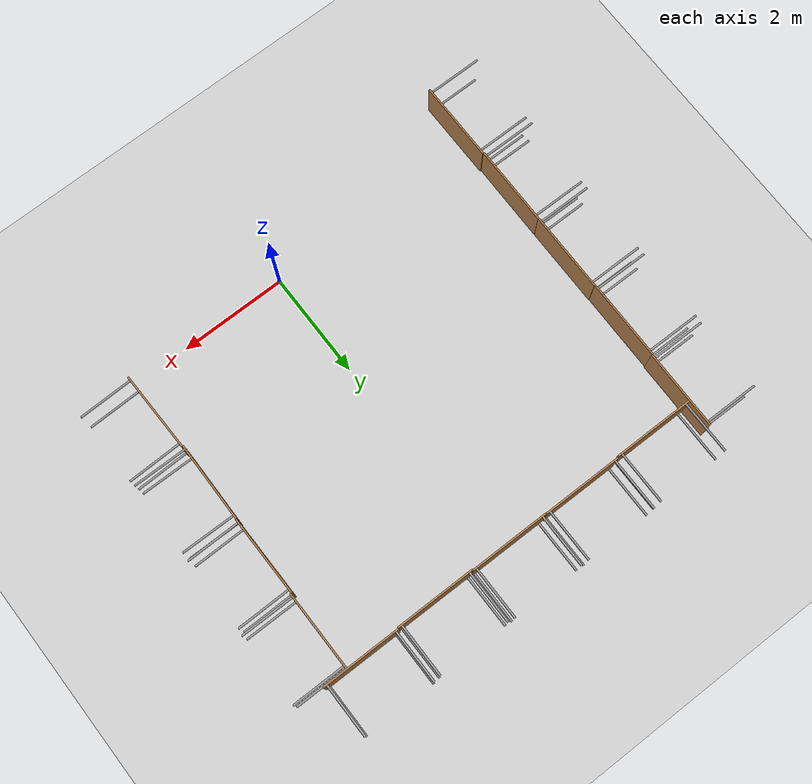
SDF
<sdf version="1.6">
 <world name="default">
  <model name="ground_plane">
   <static>1</static>
   <link name="link">
    <collision name="collision">
     <geometry><plane><normal>0 0 1</normal><size>100 100</size></plane></geometry>
     <surface><friction><ode><mu>100</mu><mu2>50</mu2></ode></friction></surface>
    </collision>
    <visual name="visual">
     <cast_shadows>0</cast_shadows>
     <geometry><plane><normal>0 0 1</normal><size>100 100</size></plane></geometry>
     <material>
      <script><uri>file://media/materials/scripts/gazebo.material</uri><name>Gazebo/Grey</name></script>
     </material>
    </visual>
    <velocity_decay><linear>0</linear><angular>0</angular></velocity_decay>
   </link>
  </model>
  <model name="table">
   <static>1</static>
   <link name="link">
    <collision name="surface">
     <pose>0 0 1 0 -0 0</pose>
     <geometry><box><size>1.5 0.8 0.03</size></box></geometry>
     <surface><friction><ode><mu>0.6</mu><mu2>0.6</mu2></ode></friction></surface>
    </collision>
    <visual name="visual1">
     <pose>0 0 1 0 -0 0</pose>
     <geometry><box><size>1.5 0.8 0.03</size></box></geometry>
     <material>
      <script><uri>file://media/materials/scripts/gazebo.material</uri><name>Gazebo/Wood</name></script>
     </material>
    </visual>
    <collision name="front_left_leg">
     <pose>0.68 0.38 0.5 0 -0 0</pose>
     <geometry><cylinder><radius>0.02</radius><length>1</length></cylinder></geometry>
    </collision>
    <visual name="front_left_leg">
     <pose>0.68 0.38 0.5 0 -0 0</pose>
     <geometry><cylinder><radius>0.02</radius><length>1</length></cylinder></geometry>
     <material>
      <script><uri>file://media/materials/scripts/gazebo.material</uri><name>Gazebo/Grey</name></script>
     </material>
    </visual>
    <collision name="front_right_leg">
     <pose>0.68 -0.38 0.5 0 -0 0</pose>
     <geometry><cylinder><radius>0.02</radius><length>1</length></cylinder></geometry>
    </collision>
    <visual name="front_right_leg">
     <pose>0.68 -0.38 0.5 0 -0 0</pose>
     <geometry><cylinder><radius>0.02</radius><length>1</length></cylinder></geometry>
     <material>
      <script><uri>file://media/materials/scripts/gazebo.material</uri><name>Gazebo/Grey</name></script>
     </material>
    </visual>
    <collision name="back_right_leg">
     <pose>-0.68 -0.38 0.5 0 -0 0</pose>
     <geometry><cylinder><radius>0.02</radius><length>1</length></cylinder></geometry>
    </collision>
    <visual name="back_right_leg">
     <pose>-0.68 -0.38 0.5 0 -0 0</pose>
     <geometry><cylinder><radius>0.02</radius><length>1</length></cylinder></geometry>
     <material>
      <script><uri>file://media/materials/scripts/gazebo.material</uri><name>Gazebo/Grey</name></script>
     </material>
    </visual>
    <collision name="back_left_leg">
     <pose>-0.68 0.38 0.5 0 -0 0</pose>
     <geometry><cylinder><radius>0.02</radius><length>1</length></cylinder></geometry>
    </collision>
    <visual name="back_left_leg">
     <pose>-0.68 0.38 0.5 0 -0 0</pose>
     <geometry><cylinder><radius>0.02</radius><length>1</length></cylinder></geometry>
     <material>
      <script><uri>file://media/materials/scripts/gazebo.material</uri><name>Gazebo/Grey</name></script>
     </material>
    </visual>
    <velocity_decay><linear>0</linear><angular>0</angular></velocity_decay>
   </link>
   <pose>-1.72744 7.02472 0.377492 1.56736 -0 0</pose>
  </model>
  <model name="table_0">
   <static>1</static>
   <link name="link">
    <collision name="surface">
     <pose>0 0 1 0 -0 0</pose>
     <geometry><box><size>1.5 0.8 0.03</size></box></geometry>
     <surface><friction><ode><mu>0.6</mu><mu2>0.6</mu2></ode></friction></surface>
    </collision>
    <visual name="visual1">
     <pose>0 0 1 0 -0 0</pose>
     <geometry><box><size>1.5 0.8 0.03</size></box></geometry>
     <material>
      <script><uri>file://media/materials/scripts/gazebo.material</uri><name>Gazebo/Wood</name></script>
     </material>
    </visual>
    <collision name="front_left_leg">
     <pose>0.68 0.38 0.5 0 -0 0</pose>
     <geometry><cylinder><radius>0.02</radius><length>1</length></cylinder></geometry>
    </collision>
    <visual name="front_left_leg">
     <pose>0.68 0.38 0.5 0 -0 0</pose>
     <geometry><cylinder><radius>0.02</radius><length>1</length></cylinder></geometry>
     <material>
      <script><uri>file://media/materials/scripts/gazebo.material</uri><name>Gazebo/Grey</name></script>
     </material>
    </visual>
    <collision name="front_right_leg">
     <pose>0.68 -0.38 0.5 0 -0 0</pose>
     <geometry><cylinder><radius>0.02</radius><length>1</length></cylinder></geometry>
    </collision>
    <visual name="front_right_leg">
     <pose>0.68 -0.38 0.5 0 -0 0</pose>
     <geometry><cylinder><radius>0.02</radius><length>1</length></cylinder></geometry>
     <material>
      <script><uri>file://media/materials/scripts/gazebo.material</uri><name>Gazebo/Grey</name></script>
     </material>
    </visual>
    <collision name="back_right_leg">
     <pose>-0.68 -0.38 0.5 0 -0 0</pose>
     <geometry><cylinder><radius>0.02</radius><length>1</length></cylinder></geometry>
    </collision>
    <visual name="back_right_leg">
     <pose>-0.68 -0.38 0.5 0 -0 0</pose>
     <geometry><cylinder><radius>0.02</radius><length>1</length></cylinder></geometry>
     <material>
      <script><uri>file://media/materials/scripts/gazebo.material</uri><name>Gazebo/Grey</name></script>
     </material>
    </visual>
    <collision name="back_left_leg">
     <pose>-0.68 0.38 0.5 0 -0 0</pose>
     <geometry><cylinder><radius>0.02</radius><length>1</length></cylinder></geometry>
    </collision>
    <visual name="back_left_leg">
     <pose>-0.68 0.38 0.5 0 -0 0</pose>
     <geometry><cylinder><radius>0.02</radius><length>1</length></cylinder></geometry>
     <material>
      <script><uri>file://media/materials/scripts/gazebo.material</uri><name>Gazebo/Grey</name></script>
     </material>
    </visual>
    <velocity_decay><linear>0</linear><angular>0</angular></velocity_decay>
   </link>
   <pose>-0.21834 7.01913 0.401819 1.56825 -0 0</pose>
  </model>
  <model name="table_1">
   <static>1</static>
   <link name="link">
    <collision name="surface">
     <pose>0 0 1 0 -0 0</pose>
     <geometry><box><size>1.5 0.8 0.03</size></box></geometry>
     <surface><friction><ode><mu>0.6</mu><mu2>0.6</mu2></ode></friction></surface>
    </collision>
    <visual name="visual1">
     <pose>0 0 1 0 -0 0</pose>
     <geometry><box><size>1.5 0.8 0.03</size></box></geometry>
     <material>
      <script><uri>file://media/materials/scripts/gazebo.material</uri><name>Gazebo/Wood</name></script>
     </material>
    </visual>
    <collision name="front_left_leg">
     <pose>0.68 0.38 0.5 0 -0 0</pose>
     <geometry><cylinder><radius>0.02</radius><length>1</length></cylinder></geometry>
    </collision>
    <visual name="front_left_leg">
     <pose>0.68 0.38 0.5 0 -0 0</pose>
     <geometry><cylinder><radius>0.02</radius><length>1</length></cylinder></geometry>
     <material>
      <script><uri>file://media/materials/scripts/gazebo.material</uri><name>Gazebo/Grey</name></script>
     </material>
    </visual>
    <collision name="front_right_leg">
     <pose>0.68 -0.38 0.5 0 -0 0</pose>
     <geometry><cylinder><radius>0.02</radius><length>1</length></cylinder></geometry>
    </collision>
    <visual name="front_right_leg">
     <pose>0.68 -0.38 0.5 0 -0 0</pose>
     <geometry><cylinder><radius>0.02</radius><length>1</length></cylinder></geometry>
     <material>
      <script><uri>file://media/materials/scripts/gazebo.material</uri><name>Gazebo/Grey</name></script>
     </material>
    </visual>
    <collision name="back_right_leg">
     <pose>-0.68 -0.38 0.5 0 -0 0</pose>
     <geometry><cylinder><radius>0.02</radius><length>1</length></cylinder></geometry>
    </collision>
    <visual name="back_right_leg">
     <pose>-0.68 -0.38 0.5 0 -0 0</pose>
     <geometry><cylinder><radius>0.02</radius><length>1</length></cylinder></geometry>
     <material>
      <script><uri>file://media/materials/scripts/gazebo.material</uri><name>Gazebo/Grey</name></script>
     </material>
    </visual>
    <collision name="back_left_leg">
     <pose>-0.68 0.38 0.5 0 -0 0</pose>
     <geometry><cylinder><radius>0.02</radius><length>1</length></cylinder></geometry>
    </collision>
    <visual name="back_left_leg">
     <pose>-0.68 0.38 0.5 0 -0 0</pose>
     <geometry><cylinder><radius>0.02</radius><length>1</length></cylinder></geometry>
     <material>
      <script><uri>file://media/materials/scripts/gazebo.material</uri><name>Gazebo/Grey</name></script>
     </material>
    </visual>
    <velocity_decay><linear>0</linear><angular>0</angular></velocity_decay>
   </link>
   <pose>1.27062 7.00509 0.422156 1.5692 -0 0</pose>
  </model>
  <model name="table_2">
   <static>1</static>
   <link name="link">
    <collision name="surface">
     <pose>0 0 1 0 -0 0</pose>
     <geometry><box><size>1.5 0.8 0.03</size></box></geometry>
     <surface><friction><ode><mu>0.6</mu><mu2>0.6</mu2></ode></friction></surface>
    </collision>
    <visual name="visual1">
     <pose>0 0 1 0 -0 0</pose>
     <geometry><box><size>1.5 0.8 0.03</size></box></geometry>
     <material>
      <script><uri>file://media/materials/scripts/gazebo.material</uri><name>Gazebo/Wood</name></script>
     </material>
    </visual>
    <collision name="front_left_leg">
     <pose>0.68 0.38 0.5 0 -0 0</pose>
     <geometry><cylinder><radius>0.02</radius><length>1</length></cylinder></geometry>
    </collision>
    <visual name="front_left_leg">
     <pose>0.68 0.38 0.5 0 -0 0</pose>
     <geometry><cylinder><radius>0.02</radius><length>1</length></cylinder></geometry>
     <material>
      <script><uri>file://media/materials/scripts/gazebo.material</uri><name>Gazebo/Grey</name></script>
     </material>
    </visual>
    <collision name="front_right_leg">
     <pose>0.68 -0.38 0.5 0 -0 0</pose>
     <geometry><cylinder><radius>0.02</radius><length>1</length></cylinder></geometry>
    </collision>
    <visual name="front_right_leg">
     <pose>0.68 -0.38 0.5 0 -0 0</pose>
     <geometry><cylinder><radius>0.02</radius><length>1</length></cylinder></geometry>
     <material>
      <script><uri>file://media/materials/scripts/gazebo.material</uri><name>Gazebo/Grey</name></script>
     </material>
    </visual>
    <collision name="back_right_leg">
     <pose>-0.68 -0.38 0.5 0 -0 0</pose>
     <geometry><cylinder><radius>0.02</radius><length>1</length></cylinder></geometry>
    </collision>
    <visual name="back_right_leg">
     <pose>-0.68 -0.38 0.5 0 -0 0</pose>
     <geometry><cylinder><radius>0.02</radius><length>1</length></cylinder></geometry>
     <material>
      <script><uri>file://media/materials/scripts/gazebo.material</uri><name>Gazebo/Grey</name></script>
     </material>
    </visual>
    <collision name="back_left_leg">
     <pose>-0.68 0.38 0.5 0 -0 0</pose>
     <geometry><cylinder><radius>0.02</radius><length>1</length></cylinder></geometry>
    </collision>
    <visual name="back_left_leg">
     <pose>-0.68 0.38 0.5 0 -0 0</pose>
     <geometry><cylinder><radius>0.02</radius><length>1</length></cylinder></geometry>
     <material>
      <script><uri>file://media/materials/scripts/gazebo.material</uri><name>Gazebo/Grey</name></script>
     </material>
    </visual>
    <velocity_decay><linear>0</linear><angular>0</angular></velocity_decay>
   </link>
   <pose>-3.24093 7.00952 0.41318 1.56982 -0 0</pose>
  </model>
  <model name="table_3">
   <static>1</static>
   <link name="link">
    <collision name="surface">
     <pose>0 0 1 0 -0 0</pose>
     <geometry><box><size>1.5 0.8 0.03</size></box></geometry>
     <surface><friction><ode><mu>0.6</mu><mu2>0.6</mu2></ode></friction></surface>
    </collision>
    <visual name="visual1">
     <pose>0 0 1 0 -0 0</pose>
     <geometry><box><size>1.5 0.8 0.03</size></box></geometry>
     <material>
      <script><uri>file://media/materials/scripts/gazebo.material</uri><name>Gazebo/Wood</name></script>
     </material>
    </visual>
    <collision name="front_left_leg">
     <pose>0.68 0.38 0.5 0 -0 0</pose>
     <geometry><cylinder><radius>0.02</radius><length>1</length></cylinder></geometry>
    </collision>
    <visual name="front_left_leg">
     <pose>0.68 0.38 0.5 0 -0 0</pose>
     <geometry><cylinder><radius>0.02</radius><length>1</length></cylinder></geometry>
     <material>
      <script><uri>file://media/materials/scripts/gazebo.material</uri><name>Gazebo/Grey</name></script>
     </material>
    </visual>
    <collision name="front_right_leg">
     <pose>0.68 -0.38 0.5 0 -0 0</pose>
     <geometry><cylinder><radius>0.02</radius><length>1</length></cylinder></geometry>
    </collision>
    <visual name="front_right_leg">
     <pose>0.68 -0.38 0.5 0 -0 0</pose>
     <geometry><cylinder><radius>0.02</radius><length>1</length></cylinder></geometry>
     <material>
      <script><uri>file://media/materials/scripts/gazebo.material</uri><name>Gazebo/Grey</name></script>
     </material>
    </visual>
    <collision name="back_right_leg">
     <pose>-0.68 -0.38 0.5 0 -0 0</pose>
     <geometry><cylinder><radius>0.02</radius><length>1</length></cylinder></geometry>
    </collision>
    <visual name="back_right_leg">
     <pose>-0.68 -0.38 0.5 0 -0 0</pose>
     <geometry><cylinder><radius>0.02</radius><length>1</length></cylinder></geometry>
     <material>
      <script><uri>file://media/materials/scripts/gazebo.material</uri><name>Gazebo/Grey</name></script>
     </material>
    </visual>
    <collision name="back_left_leg">
     <pose>-0.68 0.38 0.5 0 -0 0</pose>
     <geometry><cylinder><radius>0.02</radius><length>1</length></cylinder></geometry>
    </collision>
    <visual name="back_left_leg">
     <pose>-0.68 0.38 0.5 0 -0 0</pose>
     <geometry><cylinder><radius>0.02</radius><length>1</length></cylinder></geometry>
     <material>
      <script><uri>file://media/materials/scripts/gazebo.material</uri><name>Gazebo/Grey</name></script>
     </material>
    </visual>
    <velocity_decay><linear>0</linear><angular>0</angular></velocity_decay>
   </link>
   <pose>2.76108 7.0224 0.393768 1.57395 -0 0</pose>
  </model>
  <model name="table_4">
   <static>1</static>
   <link name="link">
    <collision name="surface">
     <pose>0 0 1 0 -0 0</pose>
     <geometry><box><size>1.5 0.8 0.03</size></box></geometry>
     <surface><friction><ode><mu>0.6</mu><mu2>0.6</mu2></ode></friction></surface>
    </collision>
    <visual name="visual1">
     <pose>0 0 1 0 -0 0</pose>
     <geometry><box><size>1.5 0.8 0.03</size></box></geometry>
     <material>
      <script><uri>file://media/materials/scripts/gazebo.material</uri><name>Gazebo/Wood</name></script>
     </material>
    </visual>
    <collision name="front_left_leg">
     <pose>0.68 0.38 0.5 0 -0 0</pose>
     <geometry><cylinder><radius>0.02</radius><length>1</length></cylinder></geometry>
    </collision>
    <visual name="front_left_leg">
     <pose>0.68 0.38 0.5 0 -0 0</pose>
     <geometry><cylinder><radius>0.02</radius><length>1</length></cylinder></geometry>
     <material>
      <script><uri>file://media/materials/scripts/gazebo.material</uri><name>Gazebo/Grey</name></script>
     </material>
    </visual>
    <collision name="front_right_leg">
     <pose>0.68 -0.38 0.5 0 -0 0</pose>
     <geometry><cylinder><radius>0.02</radius><length>1</length></cylinder></geometry>
    </collision>
    <visual name="front_right_leg">
     <pose>0.68 -0.38 0.5 0 -0 0</pose>
     <geometry><cylinder><radius>0.02</radius><length>1</length></cylinder></geometry>
     <material>
      <script><uri>file://media/materials/scripts/gazebo.material</uri><name>Gazebo/Grey</name></script>
     </material>
    </visual>
    <collision name="back_right_leg">
     <pose>-0.68 -0.38 0.5 0 -0 0</pose>
     <geometry><cylinder><radius>0.02</radius><length>1</length></cylinder></geometry>
    </collision>
    <visual name="back_right_leg">
     <pose>-0.68 -0.38 0.5 0 -0 0</pose>
     <geometry><cylinder><radius>0.02</radius><length>1</length></cylinder></geometry>
     <material>
      <script><uri>file://media/materials/scripts/gazebo.material</uri><name>Gazebo/Grey</name></script>
     </material>
    </visual>
    <collision name="back_left_leg">
     <pose>-0.68 0.38 0.5 0 -0 0</pose>
     <geometry><cylinder><radius>0.02</radius><length>1</length></cylinder></geometry>
    </collision>
    <visual name="back_left_leg">
     <pose>-0.68 0.38 0.5 0 -0 0</pose>
     <geometry><cylinder><radius>0.02</radius><length>1</length></cylinder></geometry>
     <material>
      <script><uri>file://media/materials/scripts/gazebo.material</uri><name>Gazebo/Grey</name></script>
     </material>
    </visual>
    <velocity_decay><linear>0</linear><angular>0</angular></velocity_decay>
   </link>
   <pose>4.0519 5.27988 0.395375 1.58577 -0 -1.56889</pose>
  </model>
  <model name="table_5">
   <static>1</static>
   <link name="link">
    <collision name="surface">
     <pose>0 0 1 0 -0 0</pose>
     <geometry><box><size>1.5 0.8 0.03</size></box></geometry>
     <surface><friction><ode><mu>0.6</mu><mu2>0.6</mu2></ode></friction></surface>
    </collision>
    <visual name="visual1">
     <pose>0 0 1 0 -0 0</pose>
     <geometry><box><size>1.5 0.8 0.03</size></box></geometry>
     <material>
      <script><uri>file://media/materials/scripts/gazebo.material</uri><name>Gazebo/Wood</name></script>
     </material>
    </visual>
    <collision name="front_left_leg">
     <pose>0.68 0.38 0.5 0 -0 0</pose>
     <geometry><cylinder><radius>0.02</radius><length>1</length></cylinder></geometry>
    </collision>
    <visual name="front_left_leg">
     <pose>0.68 0.38 0.5 0 -0 0</pose>
     <geometry><cylinder><radius>0.02</radius><length>1</length></cylinder></geometry>
     <material>
      <script><uri>file://media/materials/scripts/gazebo.material</uri><name>Gazebo/Grey</name></script>
     </material>
    </visual>
    <collision name="front_right_leg">
     <pose>0.68 -0.38 0.5 0 -0 0</pose>
     <geometry><cylinder><radius>0.02</radius><length>1</length></cylinder></geometry>
    </collision>
    <visual name="front_right_leg">
     <pose>0.68 -0.38 0.5 0 -0 0</pose>
     <geometry><cylinder><radius>0.02</radius><length>1</length></cylinder></geometry>
     <material>
      <script><uri>file://media/materials/scripts/gazebo.material</uri><name>Gazebo/Grey</name></script>
     </material>
    </visual>
    <collision name="back_right_leg">
     <pose>-0.68 -0.38 0.5 0 -0 0</pose>
     <geometry><cylinder><radius>0.02</radius><length>1</length></cylinder></geometry>
    </collision>
    <visual name="back_right_leg">
     <pose>-0.68 -0.38 0.5 0 -0 0</pose>
     <geometry><cylinder><radius>0.02</radius><length>1</length></cylinder></geometry>
     <material>
      <script><uri>file://media/materials/scripts/gazebo.material</uri><name>Gazebo/Grey</name></script>
     </material>
    </visual>
    <collision name="back_left_leg">
     <pose>-0.68 0.38 0.5 0 -0 0</pose>
     <geometry><cylinder><radius>0.02</radius><length>1</length></cylinder></geometry>
    </collision>
    <visual name="back_left_leg">
     <pose>-0.68 0.38 0.5 0 -0 0</pose>
     <geometry><cylinder><radius>0.02</radius><length>1</length></cylinder></geometry>
     <material>
      <script><uri>file://media/materials/scripts/gazebo.material</uri><name>Gazebo/Grey</name></script>
     </material>
    </visual>
    <velocity_decay><linear>0</linear><angular>0</angular></velocity_decay>
   </link>
   <pose>4.02611 3.79466 0.386087 1.56682 -0 -1.564</pose>
  </model>
  <model name="table_6">
   <static>1</static>
   <link name="link">
    <collision name="surface">
     <pose>0 0 1 0 -0 0</pose>
     <geometry><box><size>1.5 0.8 0.03</size></box></geometry>
     <surface><friction><ode><mu>0.6</mu><mu2>0.6</mu2></ode></friction></surface>
    </collision>
    <visual name="visual1">
     <pose>0 0 1 0 -0 0</pose>
     <geometry><box><size>1.5 0.8 0.03</size></box></geometry>
     <material>
      <script><uri>file://media/materials/scripts/gazebo.material</uri><name>Gazebo/Wood</name></script>
     </material>
    </visual>
    <collision name="front_left_leg">
     <pose>0.68 0.38 0.5 0 -0 0</pose>
     <geometry><cylinder><radius>0.02</radius><length>1</length></cylinder></geometry>
    </collision>
    <visual name="front_left_leg">
     <pose>0.68 0.38 0.5 0 -0 0</pose>
     <geometry><cylinder><radius>0.02</radius><length>1</length></cylinder></geometry>
     <material>
      <script><uri>file://media/materials/scripts/gazebo.material</uri><name>Gazebo/Grey</name></script>
     </material>
    </visual>
    <collision name="front_right_leg">
     <pose>0.68 -0.38 0.5 0 -0 0</pose>
     <geometry><cylinder><radius>0.02</radius><length>1</length></cylinder></geometry>
    </collision>
    <visual name="front_right_leg">
     <pose>0.68 -0.38 0.5 0 -0 0</pose>
     <geometry><cylinder><radius>0.02</radius><length>1</length></cylinder></geometry>
     <material>
      <script><uri>file://media/materials/scripts/gazebo.material</uri><name>Gazebo/Grey</name></script>
     </material>
    </visual>
    <collision name="back_right_leg">
     <pose>-0.68 -0.38 0.5 0 -0 0</pose>
     <geometry><cylinder><radius>0.02</radius><length>1</length></cylinder></geometry>
    </collision>
    <visual name="back_right_leg">
     <pose>-0.68 -0.38 0.5 0 -0 0</pose>
     <geometry><cylinder><radius>0.02</radius><length>1</length></cylinder></geometry>
     <material>
      <script><uri>file://media/materials/scripts/gazebo.material</uri><name>Gazebo/Grey</name></script>
     </material>
    </visual>
    <collision name="back_left_leg">
     <pose>-0.68 0.38 0.5 0 -0 0</pose>
     <geometry><cylinder><radius>0.02</radius><length>1</length></cylinder></geometry>
    </collision>
    <visual name="back_left_leg">
     <pose>-0.68 0.38 0.5 0 -0 0</pose>
     <geometry><cylinder><radius>0.02</radius><length>1</length></cylinder></geometry>
     <material>
      <script><uri>file://media/materials/scripts/gazebo.material</uri><name>Gazebo/Grey</name></script>
     </material>
    </visual>
    <velocity_decay><linear>0</linear><angular>0</angular></velocity_decay>
   </link>
   <pose>4.01433 2.28553 0.420375 1.57099 -0 -1.57986</pose>
  </model>
  <model name="table_7">
   <static>1</static>
   <link name="link">
    <collision name="surface">
     <pose>0 0 1 0 -0 0</pose>
     <geometry><box><size>1.5 0.8 0.03</size></box></geometry>
     <surface><friction><ode><mu>0.6</mu><mu2>0.6</mu2></ode></friction></surface>
    </collision>
    <visual name="visual1">
     <pose>0 0 1 0 -0 0</pose>
     <geometry><box><size>1.5 0.8 0.03</size></box></geometry>
     <material>
      <script><uri>file://media/materials/scripts/gazebo.material</uri><name>Gazebo/Wood</name></script>
     </material>
    </visual>
    <collision name="front_left_leg">
     <pose>0.68 0.38 0.5 0 -0 0</pose>
     <geometry><cylinder><radius>0.02</radius><length>1</length></cylinder></geometry>
    </collision>
    <visual name="front_left_leg">
     <pose>0.68 0.38 0.5 0 -0 0</pose>
     <geometry><cylinder><radius>0.02</radius><length>1</length></cylinder></geometry>
     <material>
      <script><uri>file://media/materials/scripts/gazebo.material</uri><name>Gazebo/Grey</name></script>
     </material>
    </visual>
    <collision name="front_right_leg">
     <pose>0.68 -0.38 0.5 0 -0 0</pose>
     <geometry><cylinder><radius>0.02</radius><length>1</length></cylinder></geometry>
    </collision>
    <visual name="front_right_leg">
     <pose>0.68 -0.38 0.5 0 -0 0</pose>
     <geometry><cylinder><radius>0.02</radius><length>1</length></cylinder></geometry>
     <material>
      <script><uri>file://media/materials/scripts/gazebo.material</uri><name>Gazebo/Grey</name></script>
     </material>
    </visual>
    <collision name="back_right_leg">
     <pose>-0.68 -0.38 0.5 0 -0 0</pose>
     <geometry><cylinder><radius>0.02</radius><length>1</length></cylinder></geometry>
    </collision>
    <visual name="back_right_leg">
     <pose>-0.68 -0.38 0.5 0 -0 0</pose>
     <geometry><cylinder><radius>0.02</radius><length>1</length></cylinder></geometry>
     <material>
      <script><uri>file://media/materials/scripts/gazebo.material</uri><name>Gazebo/Grey</name></script>
     </material>
    </visual>
    <collision name="back_left_leg">
     <pose>-0.68 0.38 0.5 0 -0 0</pose>
     <geometry><cylinder><radius>0.02</radius><length>1</length></cylinder></geometry>
    </collision>
    <visual name="back_left_leg">
     <pose>-0.68 0.38 0.5 0 -0 0</pose>
     <geometry><cylinder><radius>0.02</radius><length>1</length></cylinder></geometry>
     <material>
      <script><uri>file://media/materials/scripts/gazebo.material</uri><name>Gazebo/Grey</name></script>
     </material>
    </visual>
    <velocity_decay><linear>0</linear><angular>0</angular></velocity_decay>
   </link>
   <pose>4.03905 0.818093 0.41004 1.57486 -0.000132 -1.55158</pose>
  </model>
  <model name="table_22">
   <static>1</static>
   <link name="link">
    <collision name="surface">
     <pose>0 0 1 0 -0 0</pose>
     <geometry><box><size>1.5 0.8 0.03</size></box></geometry>
     <surface><friction><ode><mu>0.6</mu><mu2>0.6</mu2></ode></friction></surface>
    </collision>
    <visual name="visual1">
     <pose>0 0 1 0 -0 0</pose>
     <geometry><box><size>1.5 0.8 0.03</size></box></geometry>
     <material>
      <script><uri>file://media/materials/scripts/gazebo.material</uri><name>Gazebo/Wood</name></script>
     </material>
    </visual>
    <collision name="front_left_leg">
     <pose>0.68 0.38 0.5 0 -0 0</pose>
     <geometry><cylinder><radius>0.02</radius><length>1</length></cylinder></geometry>
    </collision>
    <visual name="front_left_leg">
     <pose>0.68 0.38 0.5 0 -0 0</pose>
     <geometry><cylinder><radius>0.02</radius><length>1</length></cylinder></geometry>
     <material>
      <script><uri>file://media/materials/scripts/gazebo.material</uri><name>Gazebo/Grey</name></script>
     </material>
    </visual>
    <collision name="front_right_leg">
     <pose>0.68 -0.38 0.5 0 -0 0</pose>
     <geometry><cylinder><radius>0.02</radius><length>1</length></cylinder></geometry>
    </collision>
    <visual name="front_right_leg">
     <pose>0.68 -0.38 0.5 0 -0 0</pose>
     <geometry><cylinder><radius>0.02</radius><length>1</length></cylinder></geometry>
     <material>
      <script><uri>file://media/materials/scripts/gazebo.material</uri><name>Gazebo/Grey</name></script>
     </material>
    </visual>
    <collision name="back_right_leg">
     <pose>-0.68 -0.38 0.5 0 -0 0</pose>
     <geometry><cylinder><radius>0.02</radius><length>1</length></cylinder></geometry>
    </collision>
    <visual name="back_right_leg">
     <pose>-0.68 -0.38 0.5 0 -0 0</pose>
     <geometry><cylinder><radius>0.02</radius><length>1</length></cylinder></geometry>
     <material>
      <script><uri>file://media/materials/scripts/gazebo.material</uri><name>Gazebo/Grey</name></script>
     </material>
    </visual>
    <collision name="back_left_leg">
     <pose>-0.68 0.38 0.5 0 -0 0</pose>
     <geometry><cylinder><radius>0.02</radius><length>1</length></cylinder></geometry>
    </collision>
    <visual name="back_left_leg">
     <pose>-0.68 0.38 0.5 0 -0 0</pose>
     <geometry><cylinder><radius>0.02</radius><length>1</length></cylinder></geometry>
     <material>
      <script><uri>file://media/materials/scripts/gazebo.material</uri><name>Gazebo/Grey</name></script>
     </material>
    </visual>
    <velocity_decay><linear>0</linear><angular>0</angular></velocity_decay>
   </link>
   <pose>-5.02461 -0.226551 0.392523 1.56776 3.8e-05 1.57174</pose>
  </model>
  <model name="table_23">
   <static>1</static>
   <link name="link">
    <collision name="surface">
     <pose>0 0 1 0 -0 0</pose>
     <geometry><box><size>1.5 0.8 0.03</size></box></geometry>
     <surface><friction><ode><mu>0.6</mu><mu2>0.6</mu2></ode></friction></surface>
    </collision>
    <visual name="visual1">
     <pose>0 0 1 0 -0 0</pose>
     <geometry><box><size>1.5 0.8 0.03</size></box></geometry>
     <material>
      <script><uri>file://media/materials/scripts/gazebo.material</uri><name>Gazebo/Wood</name></script>
     </material>
    </visual>
    <collision name="front_left_leg">
     <pose>0.68 0.38 0.5 0 -0 0</pose>
     <geometry><cylinder><radius>0.02</radius><length>1</length></cylinder></geometry>
    </collision>
    <visual name="front_left_leg">
     <pose>0.68 0.38 0.5 0 -0 0</pose>
     <geometry><cylinder><radius>0.02</radius><length>1</length></cylinder></geometry>
     <material>
      <script><uri>file://media/materials/scripts/gazebo.material</uri><name>Gazebo/Grey</name></script>
     </material>
    </visual>
    <collision name="front_right_leg">
     <pose>0.68 -0.38 0.5 0 -0 0</pose>
     <geometry><cylinder><radius>0.02</radius><length>1</length></cylinder></geometry>
    </collision>
    <visual name="front_right_leg">
     <pose>0.68 -0.38 0.5 0 -0 0</pose>
     <geometry><cylinder><radius>0.02</radius><length>1</length></cylinder></geometry>
     <material>
      <script><uri>file://media/materials/scripts/gazebo.material</uri><name>Gazebo/Grey</name></script>
     </material>
    </visual>
    <collision name="back_right_leg">
     <pose>-0.68 -0.38 0.5 0 -0 0</pose>
     <geometry><cylinder><radius>0.02</radius><length>1</length></cylinder></geometry>
    </collision>
    <visual name="back_right_leg">
     <pose>-0.68 -0.38 0.5 0 -0 0</pose>
     <geometry><cylinder><radius>0.02</radius><length>1</length></cylinder></geometry>
     <material>
      <script><uri>file://media/materials/scripts/gazebo.material</uri><name>Gazebo/Grey</name></script>
     </material>
    </visual>
    <collision name="back_left_leg">
     <pose>-0.68 0.38 0.5 0 -0 0</pose>
     <geometry><cylinder><radius>0.02</radius><length>1</length></cylinder></geometry>
    </collision>
    <visual name="back_left_leg">
     <pose>-0.68 0.38 0.5 0 -0 0</pose>
     <geometry><cylinder><radius>0.02</radius><length>1</length></cylinder></geometry>
     <material>
      <script><uri>file://media/materials/scripts/gazebo.material</uri><name>Gazebo/Grey</name></script>
     </material>
    </visual>
    <velocity_decay><linear>0</linear><angular>0</angular></velocity_decay>
   </link>
   <pose>-5.03967 1.27996 0.400284 1.57418 -0 1.56558</pose>
  </model>
  <model name="table_24">
   <static>1</static>
   <link name="link">
    <collision name="surface">
     <pose>0 0 1 0 -0 0</pose>
     <geometry><box><size>1.5 0.8 0.03</size></box></geometry>
     <surface><friction><ode><mu>0.6</mu><mu2>0.6</mu2></ode></friction></surface>
    </collision>
    <visual name="visual1">
     <pose>0 0 1 0 -0 0</pose>
     <geometry><box><size>1.5 0.8 0.03</size></box></geometry>
     <material>
      <script><uri>file://media/materials/scripts/gazebo.material</uri><name>Gazebo/Wood</name></script>
     </material>
    </visual>
    <collision name="front_left_leg">
     <pose>0.68 0.38 0.5 0 -0 0</pose>
     <geometry><cylinder><radius>0.02</radius><length>1</length></cylinder></geometry>
    </collision>
    <visual name="front_left_leg">
     <pose>0.68 0.38 0.5 0 -0 0</pose>
     <geometry><cylinder><radius>0.02</radius><length>1</length></cylinder></geometry>
     <material>
      <script><uri>file://media/materials/scripts/gazebo.material</uri><name>Gazebo/Grey</name></script>
     </material>
    </visual>
    <collision name="front_right_leg">
     <pose>0.68 -0.38 0.5 0 -0 0</pose>
     <geometry><cylinder><radius>0.02</radius><length>1</length></cylinder></geometry>
    </collision>
    <visual name="front_right_leg">
     <pose>0.68 -0.38 0.5 0 -0 0</pose>
     <geometry><cylinder><radius>0.02</radius><length>1</length></cylinder></geometry>
     <material>
      <script><uri>file://media/materials/scripts/gazebo.material</uri><name>Gazebo/Grey</name></script>
     </material>
    </visual>
    <collision name="back_right_leg">
     <pose>-0.68 -0.38 0.5 0 -0 0</pose>
     <geometry><cylinder><radius>0.02</radius><length>1</length></cylinder></geometry>
    </collision>
    <visual name="back_right_leg">
     <pose>-0.68 -0.38 0.5 0 -0 0</pose>
     <geometry><cylinder><radius>0.02</radius><length>1</length></cylinder></geometry>
     <material>
      <script><uri>file://media/materials/scripts/gazebo.material</uri><name>Gazebo/Grey</name></script>
     </material>
    </visual>
    <collision name="back_left_leg">
     <pose>-0.68 0.38 0.5 0 -0 0</pose>
     <geometry><cylinder><radius>0.02</radius><length>1</length></cylinder></geometry>
    </collision>
    <visual name="back_left_leg">
     <pose>-0.68 0.38 0.5 0 -0 0</pose>
     <geometry><cylinder><radius>0.02</radius><length>1</length></cylinder></geometry>
     <material>
      <script><uri>file://media/materials/scripts/gazebo.material</uri><name>Gazebo/Grey</name></script>
     </material>
    </visual>
    <velocity_decay><linear>0</linear><angular>0</angular></velocity_decay>
   </link>
   <pose>-5.035 2.7818 0.39911 1.57354 4.8e-05 1.56798</pose>
  </model>
  <model name="table_25">
   <static>1</static>
   <link name="link">
    <collision name="surface">
     <pose>0 0 1 0 -0 0</pose>
     <geometry><box><size>1.5 0.8 0.03</size></box></geometry>
     <surface><friction><ode><mu>0.6</mu><mu2>0.6</mu2></ode></friction></surface>
    </collision>
    <visual name="visual1">
     <pose>0 0 1 0 -0 0</pose>
     <geometry><box><size>1.5 0.8 0.03</size></box></geometry>
     <material>
      <script><uri>file://media/materials/scripts/gazebo.material</uri><name>Gazebo/Wood</name></script>
     </material>
    </visual>
    <collision name="front_left_leg">
     <pose>0.68 0.38 0.5 0 -0 0</pose>
     <geometry><cylinder><radius>0.02</radius><length>1</length></cylinder></geometry>
    </collision>
    <visual name="front_left_leg">
     <pose>0.68 0.38 0.5 0 -0 0</pose>
     <geometry><cylinder><radius>0.02</radius><length>1</length></cylinder></geometry>
     <material>
      <script><uri>file://media/materials/scripts/gazebo.material</uri><name>Gazebo/Grey</name></script>
     </material>
    </visual>
    <collision name="front_right_leg">
     <pose>0.68 -0.38 0.5 0 -0 0</pose>
     <geometry><cylinder><radius>0.02</radius><length>1</length></cylinder></geometry>
    </collision>
    <visual name="front_right_leg">
     <pose>0.68 -0.38 0.5 0 -0 0</pose>
     <geometry><cylinder><radius>0.02</radius><length>1</length></cylinder></geometry>
     <material>
      <script><uri>file://media/materials/scripts/gazebo.material</uri><name>Gazebo/Grey</name></script>
     </material>
    </visual>
    <collision name="back_right_leg">
     <pose>-0.68 -0.38 0.5 0 -0 0</pose>
     <geometry><cylinder><radius>0.02</radius><length>1</length></cylinder></geometry>
    </collision>
    <visual name="back_right_leg">
     <pose>-0.68 -0.38 0.5 0 -0 0</pose>
     <geometry><cylinder><radius>0.02</radius><length>1</length></cylinder></geometry>
     <material>
      <script><uri>file://media/materials/scripts/gazebo.material</uri><name>Gazebo/Grey</name></script>
     </material>
    </visual>
    <collision name="back_left_leg">
     <pose>-0.68 0.38 0.5 0 -0 0</pose>
     <geometry><cylinder><radius>0.02</radius><length>1</length></cylinder></geometry>
    </collision>
    <visual name="back_left_leg">
     <pose>-0.68 0.38 0.5 0 -0 0</pose>
     <geometry><cylinder><radius>0.02</radius><length>1</length></cylinder></geometry>
     <material>
      <script><uri>file://media/materials/scripts/gazebo.material</uri><name>Gazebo/Grey</name></script>
     </material>
    </visual>
    <velocity_decay><linear>0</linear><angular>0</angular></velocity_decay>
   </link>
   <pose>-5.03789 4.28636 0.391812 1.56814 2.8e-05 1.56659</pose>
  </model>
  <model name="table_26">
   <static>1</static>
   <link name="link">
    <collision name="surface">
     <pose>0 0 1 0 -0 0</pose>
     <geometry><box><size>1.5 0.8 0.03</size></box></geometry>
     <surface><friction><ode><mu>0.6</mu><mu2>0.6</mu2></ode></friction></surface>
    </collision>
    <visual name="visual1">
     <pose>0 0 1 0 -0 0</pose>
     <geometry><box><size>1.5 0.8 0.03</size></box></geometry>
     <material>
      <script><uri>file://media/materials/scripts/gazebo.material</uri><name>Gazebo/Wood</name></script>
     </material>
    </visual>
    <collision name="front_left_leg">
     <pose>0.68 0.38 0.5 0 -0 0</pose>
     <geometry><cylinder><radius>0.02</radius><length>1</length></cylinder></geometry>
    </collision>
    <visual name="front_left_leg">
     <pose>0.68 0.38 0.5 0 -0 0</pose>
     <geometry><cylinder><radius>0.02</radius><length>1</length></cylinder></geometry>
     <material>
      <script><uri>file://media/materials/scripts/gazebo.material</uri><name>Gazebo/Grey</name></script>
     </material>
    </visual>
    <collision name="front_right_leg">
     <pose>0.68 -0.38 0.5 0 -0 0</pose>
     <geometry><cylinder><radius>0.02</radius><length>1</length></cylinder></geometry>
    </collision>
    <visual name="front_right_leg">
     <pose>0.68 -0.38 0.5 0 -0 0</pose>
     <geometry><cylinder><radius>0.02</radius><length>1</length></cylinder></geometry>
     <material>
      <script><uri>file://media/materials/scripts/gazebo.material</uri><name>Gazebo/Grey</name></script>
     </material>
    </visual>
    <collision name="back_right_leg">
     <pose>-0.68 -0.38 0.5 0 -0 0</pose>
     <geometry><cylinder><radius>0.02</radius><length>1</length></cylinder></geometry>
    </collision>
    <visual name="back_right_leg">
     <pose>-0.68 -0.38 0.5 0 -0 0</pose>
     <geometry><cylinder><radius>0.02</radius><length>1</length></cylinder></geometry>
     <material>
      <script><uri>file://media/materials/scripts/gazebo.material</uri><name>Gazebo/Grey</name></script>
     </material>
    </visual>
    <collision name="back_left_leg">
     <pose>-0.68 0.38 0.5 0 -0 0</pose>
     <geometry><cylinder><radius>0.02</radius><length>1</length></cylinder></geometry>
    </collision>
    <visual name="back_left_leg">
     <pose>-0.68 0.38 0.5 0 -0 0</pose>
     <geometry><cylinder><radius>0.02</radius><length>1</length></cylinder></geometry>
     <material>
      <script><uri>file://media/materials/scripts/gazebo.material</uri><name>Gazebo/Grey</name></script>
     </material>
    </visual>
    <velocity_decay><linear>0</linear><angular>0</angular></velocity_decay>
   </link>
   <pose>-5.01679 5.78955 0.392858 1.57099 -0 1.56638</pose>
  </model>
 </world>
</sdf>
